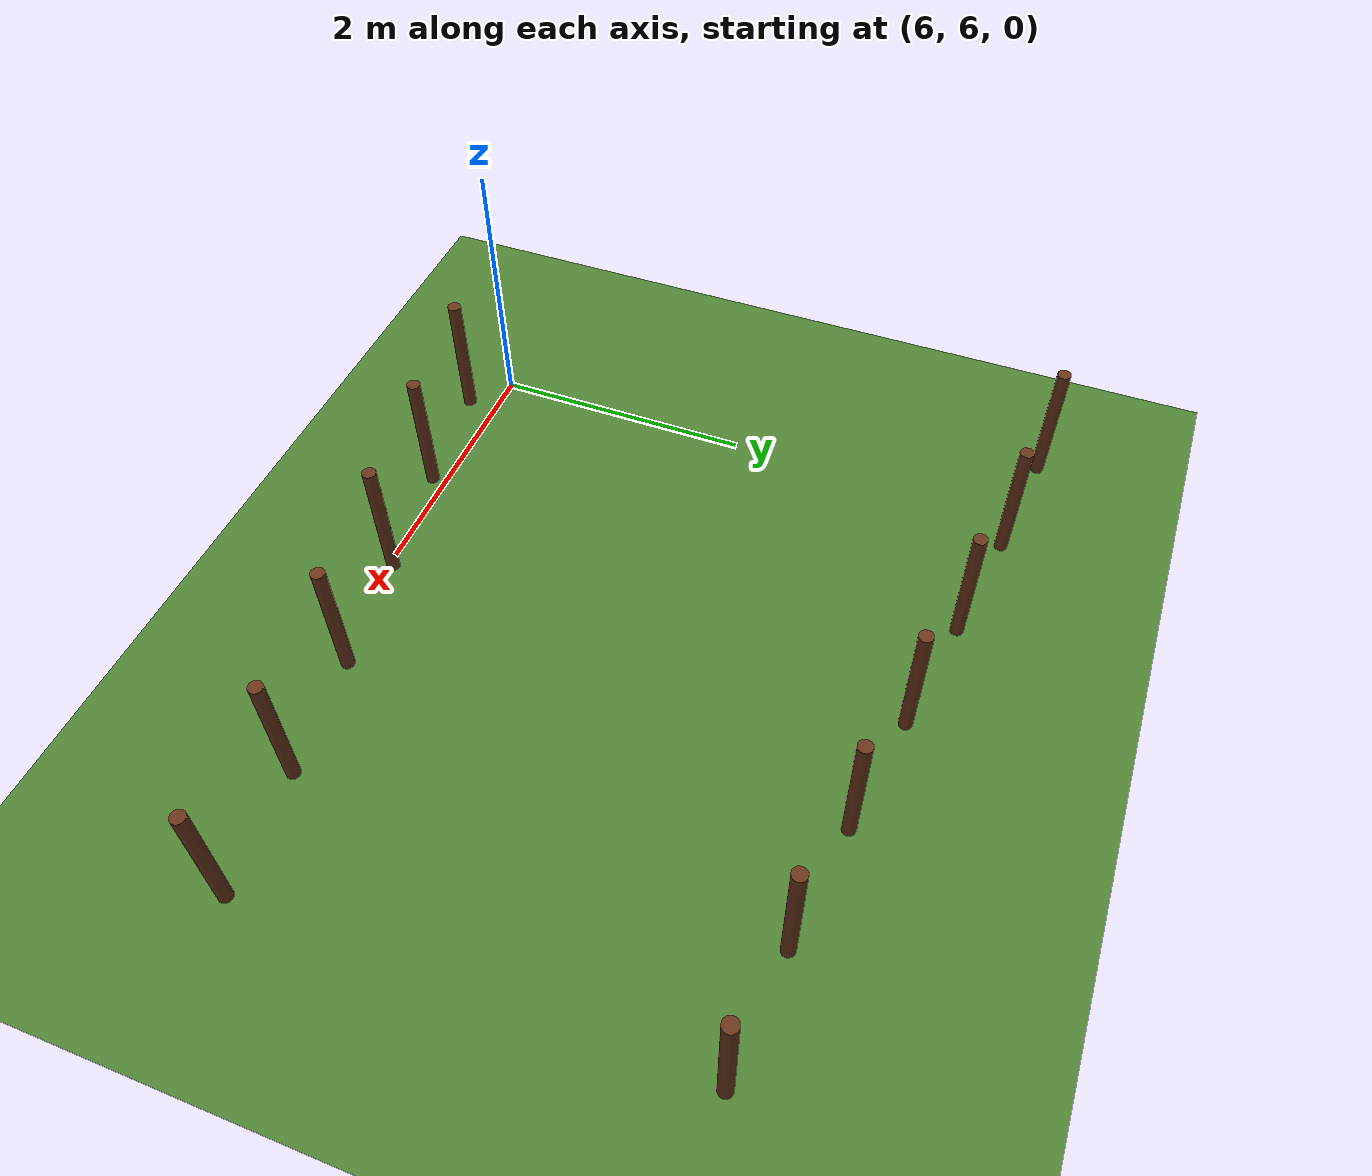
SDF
<sdf version="1.6">
 <world name="vineyard_variable">
  <model name="ground_plane">
   <static>true</static>
   <link name="link">
    <collision name="collision">
     <geometry><plane><normal>0 0 1</normal><size>100 100</size></plane></geometry>
     <surface><friction><ode><mu>100</mu><mu2>50</mu2></ode></friction></surface>
    </collision>
    <visual name="visual">
     <cast_shadows>false</cast_shadows>
     <geometry><plane><normal>0 0 1</normal><size>100 100</size></plane></geometry>
     <material><ambient>0.3 0.5 0.2 1</ambient><diffuse>0.3 0.5 0.2 1</diffuse></material>
    </visual>
   </link>
  </model>
  <model name="vine_59">
   <static>true</static>
   <pose>6.3 5.767067740190367 0.5 0 0 0</pose>
   <link name="link">
    <collision name="collision">
     <geometry><cylinder><radius>0.05</radius><length>1.0</length></cylinder></geometry>
    </collision>
    <visual name="visual">
     <geometry><cylinder><radius>0.05</radius><length>1.0</length></cylinder></geometry>
     <material><ambient>0.4 0.2 0.1 1</ambient><diffuse>0.4 0.2 0.1 1</diffuse></material>
    </visual>
   </link>
  </model>
  <model name="vine_60">
   <static>true</static>
   <pose>7.2 5.896552260135556 0.5 0 0 0</pose>
   <link name="link">
    <collision name="collision">
     <geometry><cylinder><radius>0.05</radius><length>1.0</length></cylinder></geometry>
    </collision>
    <visual name="visual">
     <geometry><cylinder><radius>0.05</radius><length>1.0</length></cylinder></geometry>
     <material><ambient>0.4 0.2 0.1 1</ambient><diffuse>0.4 0.2 0.1 1</diffuse></material>
    </visual>
   </link>
  </model>
  <model name="vine_61">
   <static>true</static>
   <pose>8.1 6.039299437498044 0.5 0 0 0</pose>
   <link name="link">
    <collision name="collision">
     <geometry><cylinder><radius>0.05</radius><length>1.0</length></cylinder></geometry>
    </collision>
    <visual name="visual">
     <geometry><cylinder><radius>0.05</radius><length>1.0</length></cylinder></geometry>
     <material><ambient>0.4 0.2 0.1 1</ambient><diffuse>0.4 0.2 0.1 1</diffuse></material>
    </visual>
   </link>
  </model>
  <model name="vine_62">
   <static>true</static>
   <pose>9.0 6.177008177317941 0.5 0 0 0</pose>
   <link name="link">
    <collision name="collision">
     <geometry><cylinder><radius>0.05</radius><length>1.0</length></cylinder></geometry>
    </collision>
    <visual name="visual">
     <geometry><cylinder><radius>0.05</radius><length>1.0</length></cylinder></geometry>
     <material><ambient>0.4 0.2 0.1 1</ambient><diffuse>0.4 0.2 0.1 1</diffuse></material>
    </visual>
   </link>
  </model>
  <model name="vine_63">
   <static>true</static>
   <pose>9.9 6.29202334433572 0.5 0 0 0</pose>
   <link name="link">
    <collision name="collision">
     <geometry><cylinder><radius>0.05</radius><length>1.0</length></cylinder></geometry>
    </collision>
    <visual name="visual">
     <geometry><cylinder><radius>0.05</radius><length>1.0</length></cylinder></geometry>
     <material><ambient>0.4 0.2 0.1 1</ambient><diffuse>0.4 0.2 0.1 1</diffuse></material>
    </visual>
   </link>
  </model>
  <model name="vine_64">
   <static>true</static>
   <pose>10.8 6.369599263489275 0.5 0 0 0</pose>
   <link name="link">
    <collision name="collision">
     <geometry><cylinder><radius>0.05</radius><length>1.0</length></cylinder></geometry>
    </collision>
    <visual name="visual">
     <geometry><cylinder><radius>0.05</radius><length>1.0</length></cylinder></geometry>
     <material><ambient>0.4 0.2 0.1 1</ambient><diffuse>0.4 0.2 0.1 1</diffuse></material>
    </visual>
   </link>
  </model>
  <model name="vine_84">
   <static>true</static>
   <pose>5.4 10.332553384311474 0.5 0 0 0</pose>
   <link name="link">
    <collision name="collision">
     <geometry><cylinder><radius>0.05</radius><length>1.0</length></cylinder></geometry>
    </collision>
    <visual name="visual">
     <geometry><cylinder><radius>0.05</radius><length>1.0</length></cylinder></geometry>
     <material><ambient>0.4 0.2 0.1 1</ambient><diffuse>0.4 0.2 0.1 1</diffuse></material>
    </visual>
   </link>
  </model>
  <model name="vine_85">
   <static>true</static>
   <pose>6.3 10.232932259809633 0.5 0 0 0</pose>
   <link name="link">
    <collision name="collision">
     <geometry><cylinder><radius>0.05</radius><length>1.0</length></cylinder></geometry>
    </collision>
    <visual name="visual">
     <geometry><cylinder><radius>0.05</radius><length>1.0</length></cylinder></geometry>
     <material><ambient>0.4 0.2 0.1 1</ambient><diffuse>0.4 0.2 0.1 1</diffuse></material>
    </visual>
   </link>
  </model>
  <model name="vine_86">
   <static>true</static>
   <pose>7.2 10.103447739864444 0.5 0 0 0</pose>
   <link name="link">
    <collision name="collision">
     <geometry><cylinder><radius>0.05</radius><length>1.0</length></cylinder></geometry>
    </collision>
    <visual name="visual">
     <geometry><cylinder><radius>0.05</radius><length>1.0</length></cylinder></geometry>
     <material><ambient>0.4 0.2 0.1 1</ambient><diffuse>0.4 0.2 0.1 1</diffuse></material>
    </visual>
   </link>
  </model>
  <model name="vine_87">
   <static>true</static>
   <pose>8.1 9.960700562501957 0.5 0 0 0</pose>
   <link name="link">
    <collision name="collision">
     <geometry><cylinder><radius>0.05</radius><length>1.0</length></cylinder></geometry>
    </collision>
    <visual name="visual">
     <geometry><cylinder><radius>0.05</radius><length>1.0</length></cylinder></geometry>
     <material><ambient>0.4 0.2 0.1 1</ambient><diffuse>0.4 0.2 0.1 1</diffuse></material>
    </visual>
   </link>
  </model>
  <model name="vine_88">
   <static>true</static>
   <pose>9.0 9.82299182268206 0.5 0 0 0</pose>
   <link name="link">
    <collision name="collision">
     <geometry><cylinder><radius>0.05</radius><length>1.0</length></cylinder></geometry>
    </collision>
    <visual name="visual">
     <geometry><cylinder><radius>0.05</radius><length>1.0</length></cylinder></geometry>
     <material><ambient>0.4 0.2 0.1 1</ambient><diffuse>0.4 0.2 0.1 1</diffuse></material>
    </visual>
   </link>
  </model>
  <model name="vine_89">
   <static>true</static>
   <pose>9.9 9.70797665566428 0.5 0 0 0</pose>
   <link name="link">
    <collision name="collision">
     <geometry><cylinder><radius>0.05</radius><length>1.0</length></cylinder></geometry>
    </collision>
    <visual name="visual">
     <geometry><cylinder><radius>0.05</radius><length>1.0</length></cylinder></geometry>
     <material><ambient>0.4 0.2 0.1 1</ambient><diffuse>0.4 0.2 0.1 1</diffuse></material>
    </visual>
   </link>
  </model>
  <model name="vine_90">
   <static>true</static>
   <pose>10.8 9.630400736510724 0.5 0 0 0</pose>
   <link name="link">
    <collision name="collision">
     <geometry><cylinder><radius>0.05</radius><length>1.0</length></cylinder></geometry>
    </collision>
    <visual name="visual">
     <geometry><cylinder><radius>0.05</radius><length>1.0</length></cylinder></geometry>
     <material><ambient>0.4 0.2 0.1 1</ambient><diffuse>0.4 0.2 0.1 1</diffuse></material>
    </visual>
   </link>
  </model>
 </world>
</sdf>
